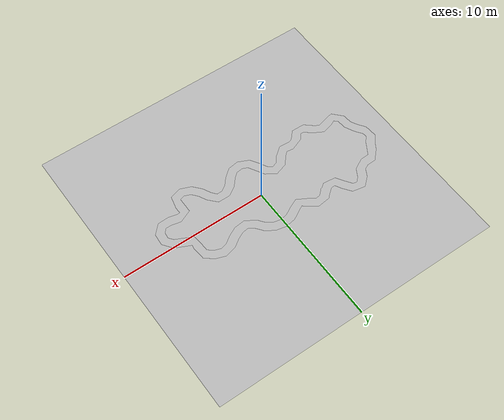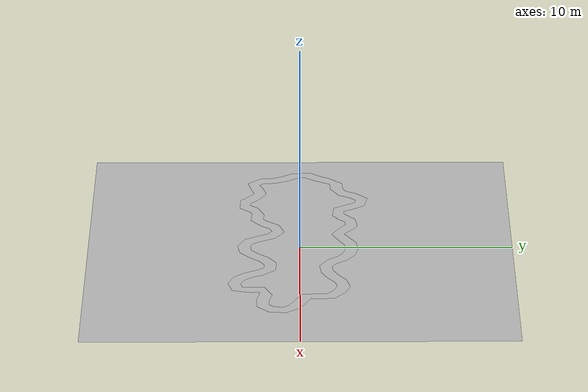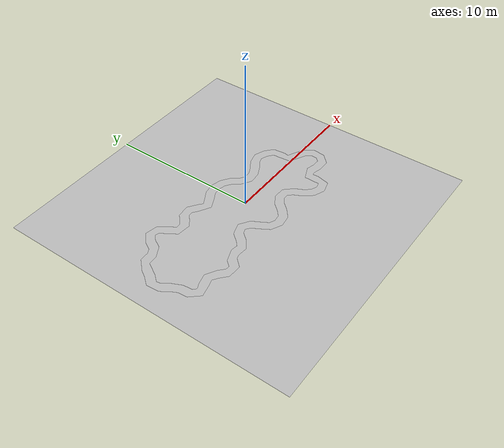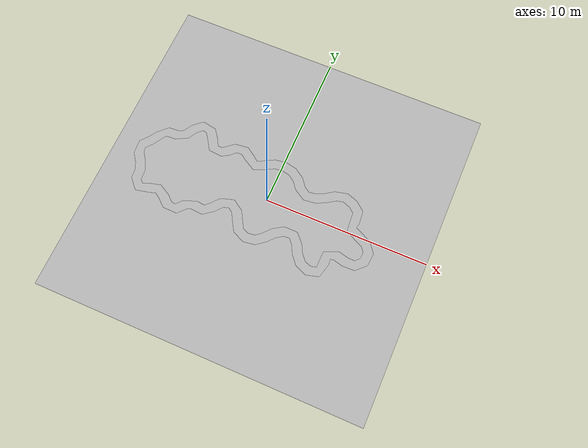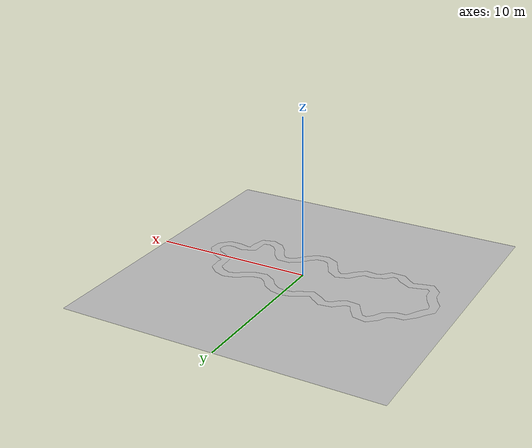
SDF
<?xml version="1.0" ?>
<sdf version="1.5">
	<world name="default">
		<!-- Animated sky with clouds -->
		<scene>
			<shadows>false</shadows>
			<sky>
				<clouds>
					<speed>12</speed>
				</clouds>
			</sky>
		</scene>

		<!-- A global light source -->
		<include>
			<uri>model://sun</uri>
		</include>

		<!-- A ground plane -->
		<include>
			<uri>model://ground_plane_grass</uri>
		</include>

		<!-- A dirt path -->
		<include>
			<uri>model://dirt_path_curves</uri>
			<pose>0.0 0.0 0.001 0.0 0.0 0.0</pose>	<!-- Avoid z-fighting with ground plane -->
		</include>
	</world>
</sdf>

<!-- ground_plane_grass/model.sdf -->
<sdf version='1.6'>
	<model name="ground_plane_grass">
		<static>true</static>
		<link name='ground_plane_grass'>
			<collision name='collision'>
				<geometry>
					<mesh>
						<uri>model://ground_plane_grass/ground_plane_grass.dae</uri>
					</mesh>
				</geometry>
				<surface>
					<friction>
						<ode>
							<mu>100</mu>
							<mu2>50</mu2>
						</ode>
					</friction>
				</surface>
			</collision>

			<visual name='visual'>
				<cast_shadows>false</cast_shadows>
				<geometry>
					<mesh>
						<uri>model://ground_plane_grass/ground_plane_grass.dae</uri>
					</mesh>
				</geometry>
			</visual>
		</link>
	</model>
</sdf>

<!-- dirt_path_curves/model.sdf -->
<sdf version='1.6'>
  <model name="dirt_path_curves">
	<static>true</static>
	<link name='path'>
		<collision name='collision'>
			<geometry>
				<mesh>
					<uri>model://dirt_path_curves/dirt_path_curves.dae</uri>
				</mesh>
			</geometry>
		</collision>

		<visual name='visual'>
			<cast_shadows>false</cast_shadows>
			<geometry>
				<mesh>
					<uri>model://dirt_path_curves/dirt_path_curves.dae</uri>
				</mesh>
			</geometry>
		</visual>
	</link>
  </model>
</sdf>
